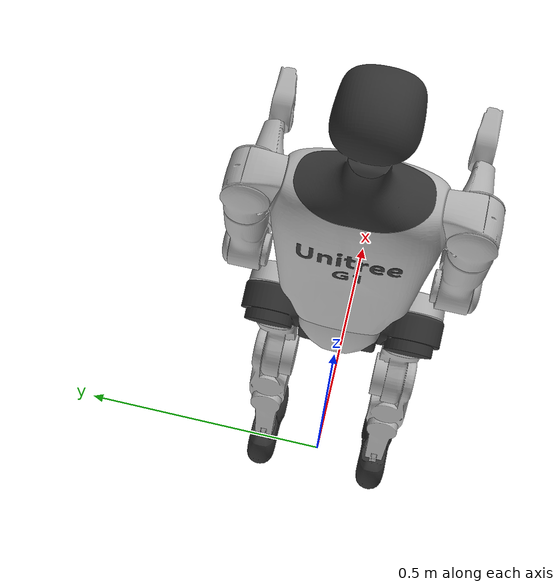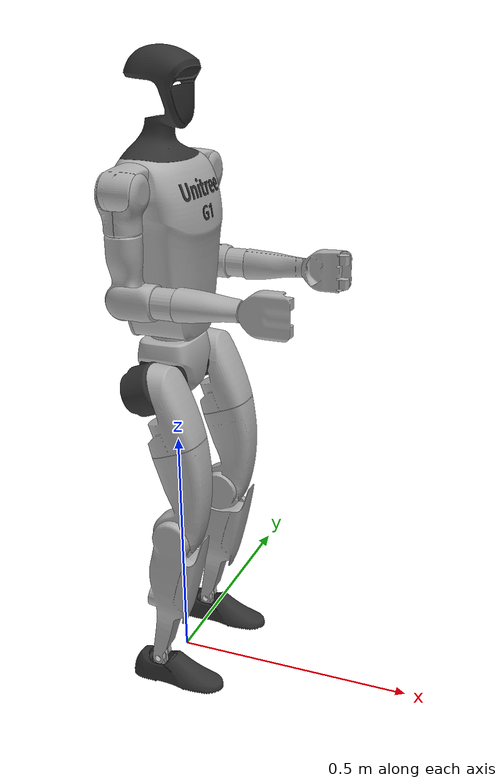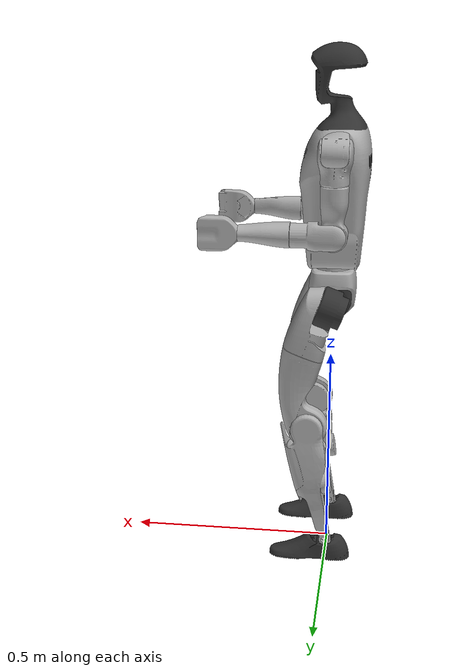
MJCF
<mujoco model="g1">
  <compiler angle="radian" meshdir="assets" autolimits="true"/>

  <visual>
    <global ellipsoidinertia="true"/>
  </visual>

  <default>
    <default class="g1">
      <site rgba="1 0 0 1" size="0.01" group="5"/>
      <joint damping="0.5" armature="0.01" frictionloss="0.1"/>
      <default class="arm_joint">
        <motor ctrlrange="-20 20"/>
      </default>
      <default class="hand_joint">
        <motor ctrlrange="-0.7 0.7"/>
      </default>
      <default class="visual">
        <geom group="2" type="mesh" contype="0" conaffinity="0" density="0" material="metallic"/>
      </default>
      <default class="collision">
        <geom group="3" type="mesh"/>
        <default class="foot">
          <geom type="sphere" size="0.001"/>
        </default>
      </default>
    </default>
  </default>

  <asset>
    <material name="metallic" rgba="0.7 0.7 0.7 1"/>
    <material name="black" rgba="0.2 0.2 0.2 1"/>

    <mesh file="pelvis.STL"/>
    <mesh file="pelvis_contour_link.STL"/>
    <mesh file="left_hip_pitch_link.STL"/>
    <mesh file="left_hip_roll_link.STL"/>
    <mesh file="left_hip_yaw_link.STL"/>
    <mesh file="left_knee_link.STL"/>
    <mesh file="left_ankle_pitch_link.STL"/>
    <mesh file="left_ankle_roll_link.STL"/>
    <mesh file="right_hip_pitch_link.STL"/>
    <mesh file="right_hip_roll_link.STL"/>
    <mesh file="right_hip_yaw_link.STL"/>
    <mesh file="right_knee_link.STL"/>
    <mesh file="right_ankle_pitch_link.STL"/>
    <mesh file="right_ankle_roll_link.STL"/>
    <mesh file="torso_link.STL"/>
    <mesh file="head_link.STL"/>
    <mesh file="left_shoulder_pitch_link.STL"/>
    <mesh file="left_shoulder_roll_link.STL"/>
    <mesh file="left_shoulder_yaw_link.STL"/>
    <mesh file="left_elbow_pitch_link.STL"/>
    <mesh file="left_elbow_roll_link.STL"/>
    <mesh file="right_shoulder_pitch_link.STL"/>
    <mesh file="right_shoulder_roll_link.STL"/>
    <mesh file="right_shoulder_yaw_link.STL"/>
    <mesh file="right_elbow_pitch_link.STL"/>
    <mesh file="right_elbow_roll_link.STL"/>
    <mesh file="logo_link.STL"/>
    <mesh file="left_palm_link.STL"/>
    <mesh file="left_zero_link.STL"/>
    <mesh file="left_one_link.STL"/>
    <mesh file="left_two_link.STL"/>
    <mesh file="left_three_link.STL"/>
    <mesh file="left_four_link.STL"/>
    <mesh file="left_five_link.STL"/>
    <mesh file="left_six_link.STL"/>
    <mesh file="right_palm_link.STL"/>
    <mesh file="right_zero_link.STL"/>
    <mesh file="right_one_link.STL"/>
    <mesh file="right_two_link.STL"/>
    <mesh file="right_three_link.STL"/>
    <mesh file="right_four_link.STL"/>
    <mesh file="right_five_link.STL"/>
    <mesh file="right_six_link.STL"/>
  </asset>

  <worldbody>
    <light name="spotlight" mode="targetbodycom" target="pelvis" pos="0 -6 4" cutoff="30"/>
    <body name="pelvis" pos="0 0 0.755" childclass="g1">
      <inertial pos="0 0 -0.07605" quat="1 0 -0.000405289 0" mass="2.86" diaginertia="0.0079143 0.0069837 0.0059404"/>
      <freejoint name="floating_base_joint"/>
      <light name="tracking" mode="trackcom" pos="0 0 2"/>
      <geom type="mesh" class="visual" mesh="pelvis"/>
      <geom type="mesh" class="visual" material="black" mesh="pelvis_contour_link"/>
      <body name="left_hip_pitch_link" pos="0 0.06445 -0.1027" quat="0.984807 0 -0.17365 0">
        <inertial pos="0.001962 0.049392 -0.000941" quat="0.420735 0.907025 -0.0155675 -0.00670646" mass="1.299"
          diaginertia="0.00138785 0.000955478 0.00086947"/>
        <joint name="left_hip_pitch_joint" axis="0 1 0" range="-2.35 3.05"/>
        <geom type="mesh" class="visual" material="black" mesh="left_hip_pitch_link"/>
        <body name="left_hip_roll_link" pos="0 0.0523 0">
          <inertial pos="0.024757 -0.001036 -0.086323" quat="0.977498 -0.00692636 0.210181 0.0165269" mass="1.446"
            diaginertia="0.00244106 0.00230425 0.00142899"/>
          <joint name="left_hip_roll_joint" axis="1 0 0" range="-0.26 2.53"/>
          <geom type="mesh" class="visual" mesh="left_hip_roll_link"/>
          <body name="left_hip_yaw_link" pos="0.01966 -0.0012139 -0.1241">
            <inertial pos="-0.053554 -0.011477 -0.14067" quat="0.645099 0.15885 0.202109 0.71956" mass="2.052"
              diaginertia="0.0114475 0.0107868 0.00214501"/>
            <joint name="left_hip_yaw_joint" axis="0 0 1" range="-2.75 2.75"/>
            <geom type="mesh" class="visual" mesh="left_hip_yaw_link"/>
            <body name="left_knee_link" pos="-0.078292 -0.0017335 -0.177225" quat="0.967714 0 0.252052 0">
              <inertial pos="0.005505 0.006534 -0.116629" quat="0.799234 -0.0128894 0.0354278 0.599836" mass="2.252"
                diaginertia="0.0127418 0.0124382 0.00192524"/>
              <joint name="left_knee_joint" axis="0 1 0" range="-0.33489 2.5449"/>
              <geom type="mesh" class="visual" mesh="left_knee_link"/>
              <body name="left_ankle_pitch_link" pos="0 0.0040687 -0.30007" quat="0.99678 0 -0.0801788 0">
                <inertial pos="-0.007269 0 0.011137" quat="0.603053 0.369225 0.369225 0.603053" mass="0.074"
                  diaginertia="1.89e-05 1.40805e-05 6.9195e-06"/>
                <joint name="left_ankle_pitch_joint" axis="0 1 0" range="-0.68 0.73"/>
                <geom type="mesh" class="visual" mesh="left_ankle_pitch_link"/>
                <body name="left_ankle_roll_link" pos="0 0 -0.017558">
                  <site name="left_foot" pos="0 0 0"/>
                  <inertial pos="0.024762 2e-05 -0.012526" quat="0.000771333 0.734476 0.000921291 0.678634" mass="0.391"
                    diaginertia="0.00110394 0.0010657 0.000149255"/>
                  <joint name="left_ankle_roll_joint" axis="1 0 0" range="-0.2618 0.2618"/>
                  <geom type="mesh" class="visual" material="black" mesh="left_ankle_roll_link"/>
                  <geom name = "2_left" pos="-0.06 0.02 -0.03" class="foot"/>
                  <geom name = "3_left" pos="-0.06 -0.02 -0.03" class="foot"/>
                  <geom name = "0_left" pos="0.13 0.02 -0.03" class="foot"/>
                  <geom name = "1_left" pos="0.13 -0.02 -0.03" class="foot"/>
                  <geom name = "foot_left" pos="0.095 0 -0.03" class="foot"/>
                </body>
              </body>
            </body>
          </body>
        </body>
      </body>
      <body name="right_hip_pitch_link" pos="0 -0.06445 -0.1027" quat="0.984807 0 -0.17365 0">
        <inertial pos="0.001962 -0.049392 -0.000941" quat="0.907025 0.420735 0.00670646 0.0155675" mass="1.299"
          diaginertia="0.00138785 0.000955478 0.00086947"/>
        <joint name="right_hip_pitch_joint" axis="0 1 0" range="-2.35 3.05"/>
        <geom type="mesh" class="visual" material="black" mesh="right_hip_pitch_link"/>
        <body name="right_hip_roll_link" pos="0 -0.0523 0">
          <inertial pos="0.024757 0.001036 -0.086323" quat="0.977498 0.00692636 0.210181 -0.0165269" mass="1.446"
            diaginertia="0.00244106 0.00230425 0.00142899"/>
          <joint name="right_hip_roll_joint" axis="1 0 0" range="-2.53 0.26"/>
          <geom type="mesh" class="visual" mesh="right_hip_roll_link"/>
          <body name="right_hip_yaw_link" pos="0.01966 0.0012139 -0.1241">
            <inertial pos="-0.053554 0.011477 -0.14067" quat="0.71956 0.202109 0.15885 0.645099" mass="2.052"
              diaginertia="0.0114475 0.0107868 0.00214501"/>
            <joint name="right_hip_yaw_joint" axis="0 0 1" range="-2.75 2.75"/>
            <geom type="mesh" class="visual" mesh="right_hip_yaw_link"/>
            <body name="right_knee_link" pos="-0.078292 0.0017335 -0.177225" quat="0.967714 0 0.252052 0">
              <inertial pos="0.005505 -0.006534 -0.116629" quat="0.599836 0.0354278 -0.0128894 0.799234" mass="2.252"
                diaginertia="0.0127418 0.0124382 0.00192524"/>
              <joint name="right_knee_joint" axis="0 1 0" range="-0.33489 2.5449"/>
              <geom type="mesh" class="visual" mesh="right_knee_link"/>
              <body name="right_ankle_pitch_link" pos="0 -0.0040687 -0.30007" quat="0.99678 0 -0.0801788 0">
                <inertial pos="-0.007269 0 0.011137" quat="0.603053 0.369225 0.369225 0.603053" mass="0.074"
                  diaginertia="1.89e-05 1.40805e-05 6.9195e-06"/>
                <joint name="right_ankle_pitch_joint" axis="0 1 0" range="-0.68 0.73"/>
                <geom type="mesh" class="visual" mesh="right_ankle_pitch_link"/>
                <body name="right_ankle_roll_link" pos="0 0 -0.017558">
                  <site name="right_foot" pos="0 0 0"/>
                  <inertial pos="0.024762 -2e-05 -0.012526" quat="-0.000771333 0.734476 -0.000921291 0.678634"
                    mass="0.391" diaginertia="0.00110394 0.0010657 0.000149255"/>
                  <joint name="right_ankle_roll_joint" axis="1 0 0" range="-0.2618 0.2618"/>
                  <geom type="mesh" class="visual" material="black" mesh="right_ankle_roll_link"/>
                  <geom name = "2_right" pos="-0.06 0.02 -0.03" class="foot"/>
                  <geom name = "3_right" pos="-0.06 -0.02 -0.03" class="foot"/>
                  <geom name = "0_right" pos="0.13 0.02 -0.03" class="foot"/>
                  <geom name = "1_right" pos="0.13 -0.02 -0.03" class="foot"/>
                  <geom name = "foot_right" pos="0.095 0 -0.03" class="foot"/>
                </body>
              </body>
            </body>
          </body>
        </body>
      </body>
      <body name="torso_link">
        <inertial pos="0.00187791 0.00229457 0.208747" quat="0.999957 0.00624375 -0.00636707 -0.0026338" mass="7.52036"
          diaginertia="0.12848 0.111753 0.0350394"/>
        <site name="imu" pos="-0.04233868314 0.00166 0.152067"/>
        <site name="head" pos="0 0 0.5"/>
        <joint name="torso_joint" axis="0 0 1" range="-2.618 2.618"/>
        <geom type="mesh" class="visual" mesh="torso_link"/>
        <geom type="mesh" class="visual" material="black" mesh="head_link"/>
        <geom type="mesh" class="visual" material="black" mesh="logo_link"/>
        <body name="left_shoulder_pitch_link" pos="-0.0025 0.10396 0.25928" quat="0.990268 0.139172 0 0">
          <inertial pos="-0.001431 0.048811 0.001304" quat="0.786417 0.588396 -0.180543 0.0523639" mass="0.713"
            diaginertia="0.000466421 0.000440181 0.000410999"/>
          <joint name="left_shoulder_pitch_joint" axis="0 1 0" range="-2.9671 2.7925"/>
          <geom type="mesh" class="visual" mesh="left_shoulder_pitch_link"/>
          <body name="left_shoulder_roll_link" pos="0 0.052 0" quat="0.990268 -0.139172 0 0">
            <inertial pos="-0.003415 0.006955 -0.064598" quat="0.70683 0.0105364 0.00575207 0.707282" mass="0.642"
              diaginertia="0.000683514 0.000616029 0.000372857"/>
            <joint name="left_shoulder_roll_joint" axis="1 0 0" range="-1.5882 2.2515"/>
            <geom type="mesh" class="visual" mesh="left_shoulder_roll_link"/>
            <body name="left_shoulder_yaw_link" pos="-0.00354 0.0062424 -0.1032">
              <inertial pos="0.000375 -0.00444 -0.072374" quat="0.903834 -0.0374183 0.00985482 0.42613" mass="0.713"
                diaginertia="0.000977874 0.000964661 0.000379065"/>
              <joint name="left_shoulder_yaw_joint" axis="0 0 1" range="-2.618 2.618"/>
              <geom type="mesh" class="visual" mesh="left_shoulder_yaw_link"/>
              <body name="left_elbow_pitch_link" pos="0 0.00189 -0.0855">
                <inertial pos="0.064497 0.002873 0" quat="0.582347 0.582495 0.400893 0.401069" mass="0.601"
                  diaginertia="0.00049549 0.0004712 0.00025371"/>
                <joint name="left_elbow_pitch_joint" axis="0 1 0" range="-0.2268 3.4208"/>
                <geom type="mesh" class="visual" mesh="left_elbow_pitch_link"/>
                <body name="left_elbow_roll_link" pos="0.1 0 0">
                  <inertial pos="0.133814 0.00147121 0.000265832" quat="0.496781 0.497877 0.498782 0.506502"
                    mass="0.50826" diaginertia="0.00239763 0.00226639 0.000285577"/>
                  <joint name="left_elbow_roll_joint" axis="1 0 0" range="-2.0943 2.0943"/>
                  <geom type="mesh" class="visual" mesh="left_elbow_roll_link"/>
                  <geom pos="0.12 0 0" type="mesh" class="visual" mesh="left_palm_link"/>
                </body>
              </body>
            </body>
          </body>
        </body>
        <body name="right_shoulder_pitch_link" pos="-0.0025 -0.10396 0.25928" quat="0.990268 -0.139172 0 0">
          <inertial pos="-0.001431 -0.048811 0.001304" quat="0.588396 0.786417 -0.0523639 0.180543" mass="0.713"
            diaginertia="0.000466421 0.000440181 0.000410999"/>
          <joint name="right_shoulder_pitch_joint" axis="0 1 0" range="-2.9671 2.7925"/>
          <geom type="mesh" class="visual" mesh="right_shoulder_pitch_link"/>
          <body name="right_shoulder_roll_link" pos="0 -0.052 0" quat="0.990268 0.139172 0 0">
            <inertial pos="-0.003415 -0.006955 -0.064598" quat="0.707282 0.00575207 0.0105364 0.70683" mass="0.642"
              diaginertia="0.000683514 0.000616029 0.000372857"/>
            <joint name="right_shoulder_roll_joint" axis="1 0 0" range="-2.2515 1.5882"/>
            <geom type="mesh" class="visual" mesh="right_shoulder_roll_link"/>
            <body name="right_shoulder_yaw_link" pos="-0.00354 -0.0062424 -0.1032">
              <inertial pos="0.000375 0.00444 -0.072374" quat="0.42613 0.00985482 -0.0374183 0.903834" mass="0.713"
                diaginertia="0.000977874 0.000964661 0.000379065"/>
              <joint name="right_shoulder_yaw_joint" axis="0 0 1" range="-2.618 2.618"/>
              <geom type="mesh" class="visual" mesh="right_shoulder_yaw_link"/>
              <body name="right_elbow_pitch_link" pos="0 -0.00189 -0.0855">
                <inertial pos="0.064497 -0.002873 0" quat="0.401069 0.400893 0.582495 0.582347" mass="0.601"
                  diaginertia="0.00049549 0.0004712 0.00025371"/>
                <joint name="right_elbow_pitch_joint" axis="0 1 0" range="-0.2268 3.4208"/>
                <geom type="mesh" class="visual" mesh="right_elbow_pitch_link"/>
                <body name="right_elbow_roll_link" pos="0.1 0 0">
                  <inertial pos="0.133814 -0.00147121 0.000265832" quat="0.506502 0.498782 0.497877 0.496781"
                    mass="0.50826" diaginertia="0.00239763 0.00226639 0.000285577"/>
                  <joint name="right_elbow_roll_joint" axis="1 0 0" range="-2.0943 2.0943"/>
                  <geom type="mesh" class="visual" mesh="right_elbow_roll_link"/>
                  <geom pos="0.12 0 0" type="mesh" class="visual" mesh="right_palm_link"/>
                </body>
              </body>
            </body>
          </body>
        </body>
      </body>
    </body>
  </worldbody>

  <actuator>
    <motor class="g1" name="left_hip_pitch_joint" joint="left_hip_pitch_joint" ctrlrange="-88 88"/>
    <motor class="g1" name="left_hip_roll_joint" joint="left_hip_roll_joint" ctrlrange="-88 88"/>
    <motor class="g1" name="left_hip_yaw_joint" joint="left_hip_yaw_joint" ctrlrange="-88 88"/>
    <motor class="g1" name="left_knee_joint" joint="left_knee_joint" ctrlrange="-139 139"/>
    <motor class="g1" name="left_ankle_pitch_joint" joint="left_ankle_pitch_joint" ctrlrange="-40 40"/>
    <motor class="g1" name="left_ankle_roll_joint" joint="left_ankle_roll_joint" ctrlrange="-40 40"/>

    <motor class="g1" name="right_hip_pitch_joint" joint="right_hip_pitch_joint" ctrlrange="-88 88"/>
    <motor class="g1" name="right_hip_roll_joint" joint="right_hip_roll_joint" ctrlrange="-88 88"/>
    <motor class="g1" name="right_hip_yaw_joint" joint="right_hip_yaw_joint" ctrlrange="-88 88"/>
    <motor class="g1" name="right_knee_joint" joint="right_knee_joint" ctrlrange="-139 139"/>
    <motor class="g1" name="right_ankle_pitch_joint" joint="right_ankle_pitch_joint" ctrlrange="-40 40"/>
    <motor class="g1" name="right_ankle_roll_joint" joint="right_ankle_roll_joint" ctrlrange="-40 40"/>

    <motor class="g1" name="torso_joint" joint="torso_joint" ctrlrange="-88 88"/>

    <motor class="arm_joint" name="left_shoulder_pitch_joint" joint="left_shoulder_pitch_joint"/>
    <motor class="arm_joint" name="left_shoulder_roll_joint" joint="left_shoulder_roll_joint"/>
    <motor class="arm_joint" name="left_shoulder_yaw_joint" joint="left_shoulder_yaw_joint"/>
    <motor class="arm_joint" name="left_elbow_pitch_joint" joint="left_elbow_pitch_joint"/>
    <motor class="arm_joint" name="left_elbow_roll_joint" joint="left_elbow_roll_joint"/>

    <motor class="arm_joint" name="right_shoulder_pitch_joint" joint="right_shoulder_pitch_joint"/>
    <motor class="arm_joint" name="right_shoulder_roll_joint" joint="right_shoulder_roll_joint"/>
    <motor class="arm_joint" name="right_shoulder_yaw_joint" joint="right_shoulder_yaw_joint"/>
    <motor class="arm_joint" name="right_elbow_pitch_joint" joint="right_elbow_pitch_joint"/>
    <motor class="arm_joint" name="right_elbow_roll_joint" joint="right_elbow_roll_joint"/>

  </actuator>

  <sensor>
    <gyro name="imu-angular-velocity" site="imu" cutoff="34.9"/>
    <accelerometer name="imu-linear-acceleration" site="imu" cutoff="157"/>
    <framequat name="imu-body-quat" objtype="site" objname="imu"/>
  </sensor>

  <keyframe>
    <key name="stand"
      qpos="
      0 0 0.75
      1 0 0 0
      0 0 0 0 0 0
      0 0 0 0 0 0
      0 0 0 0
      0
      0 0 0 0 0 0"/>
  </keyframe>
</mujoco>
